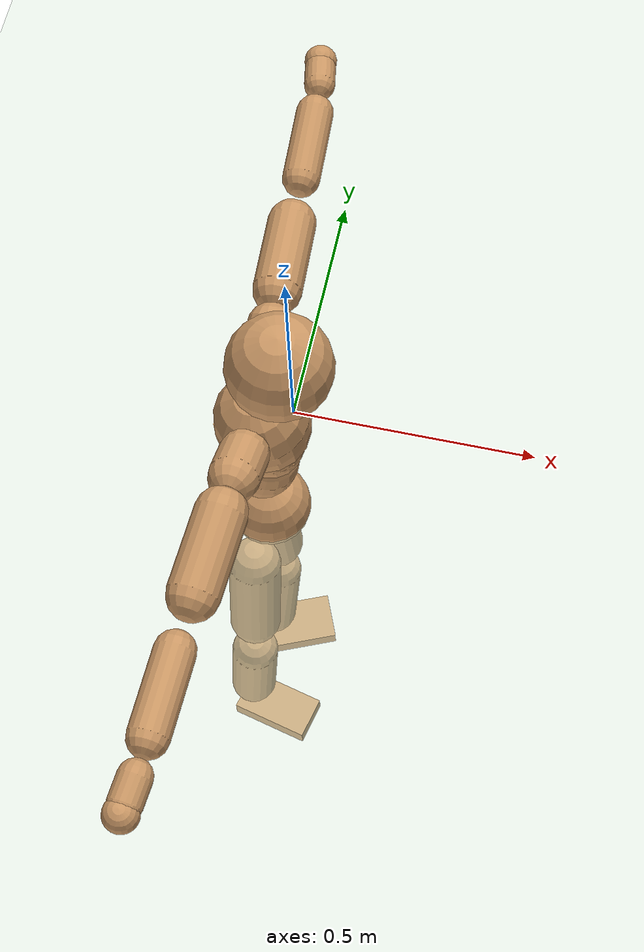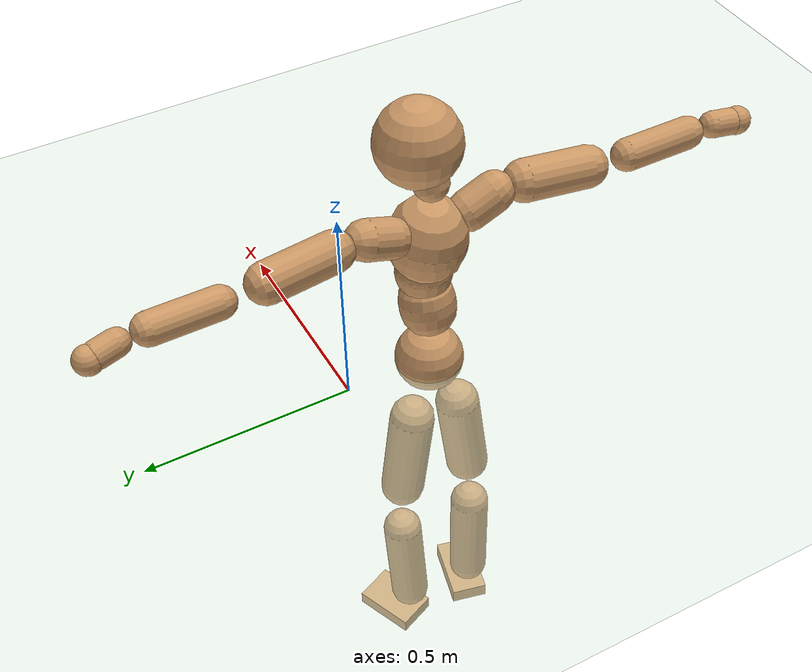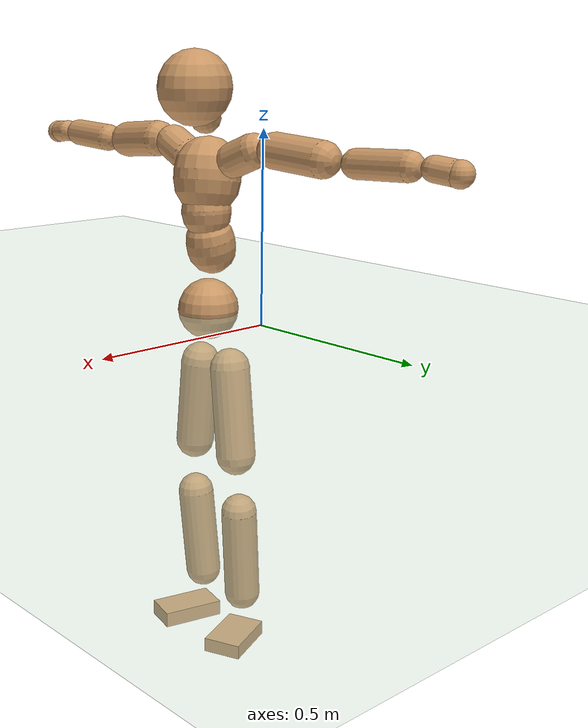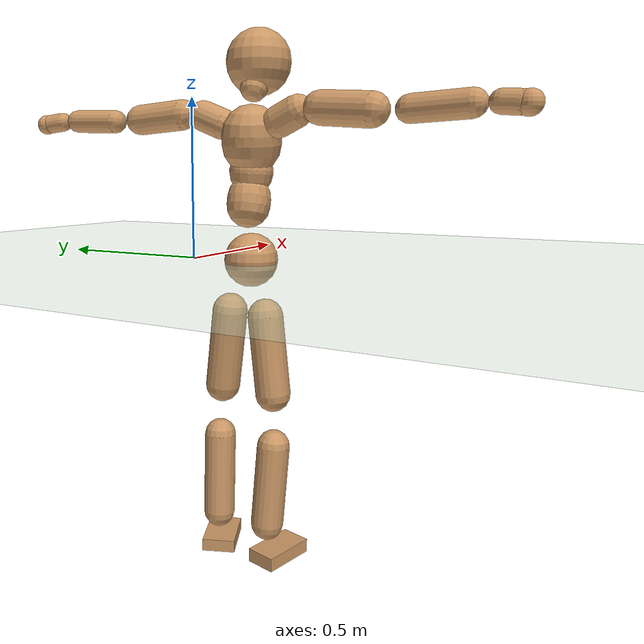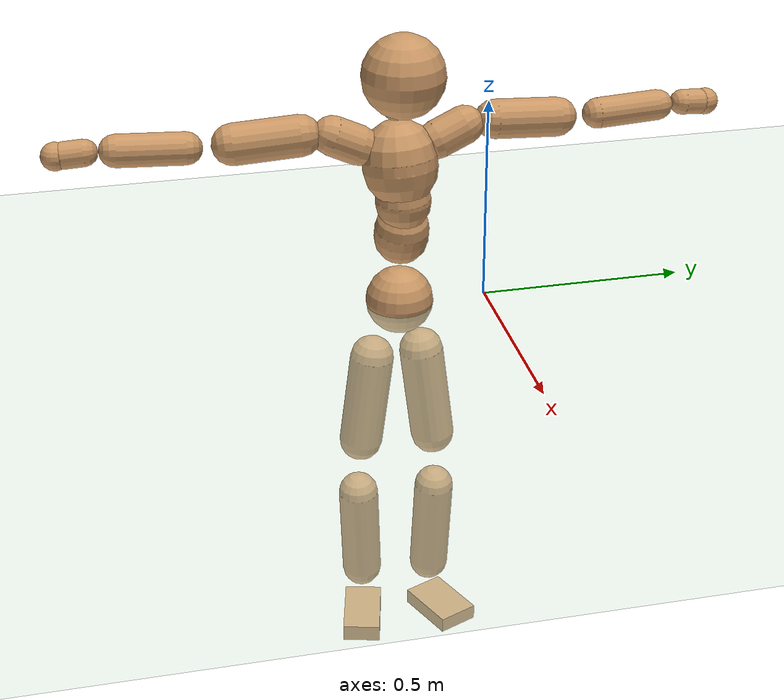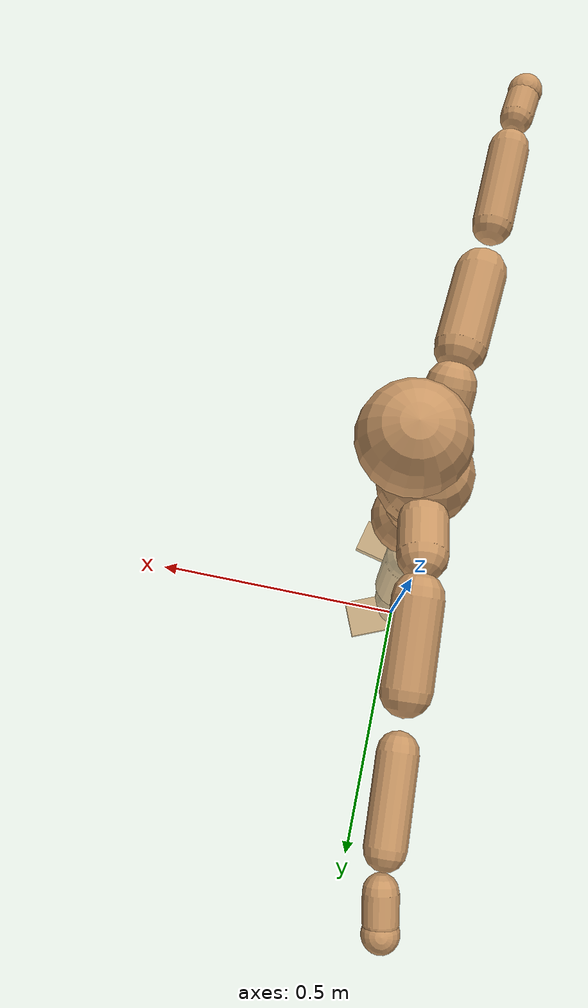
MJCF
<mujoco model="humanoid">
  <compiler coordinate="local" angle="radian"/>
  <default>
    <joint damping="0.0" armature="0.01" stiffness="0.0" limited="true"/>
    <geom conaffinity="1" condim="3" contype="7" margin="0.001" rgba="0.8 0.6 .4 1"/>
  </default>
  <asset>
    <texture type="skybox" builtin="gradient" rgb1=".4 .5 .6" rgb2="0 0 0" width="100" height="100"/>
    <texture builtin="flat" height="1278" mark="cross" markrgb="1 1 1" name="texgeom" random="0.01" rgb1="0.8 0.6 0.4" rgb2="0.8 0.6 0.4" type="cube" width="127"/>
    <texture builtin="checker" height="100" name="texplane" rgb1="0 0 0" rgb2="0.8 0.8 0.8" type="2d" width="100"/>
    <material name="MatPlane" reflectance="0.5" shininess="1" specular="1" texrepeat="60 60" texture="texplane"/>
    <material name="geom" texture="texgeom" texuniform="true"/>
  </asset>
  <worldbody>
    <light cutoff="100" diffuse="1 1 1" dir="-0 0 -1.3" directional="true" exponent="1" pos="0 0 1.3" specular=".1 .1 .1"/>
    <geom conaffinity="1" condim="3" name="floor" pos="0 0 0" rgba="0.8 0.9 0.8 1" size="100 100 .2" type="plane" material="MatPlane"/>
    <body name="Pelvis" pos="0.0007 -0.2123 0.0076">
      <freejoint name="Pelvis"/>
      <geom type="sphere" contype="1" conaffinity="1" density="500" size="0.0826" pos="0.0000 0.0000 0.0000" name="Pelvis"/>
      <body name="L_Hip" pos="-0.0258 0.0515 -0.0778">
        <joint name="L_Hip_x" type="hinge" pos="0 0 0" axis="1 0 0" stiffness="800" damping="80" armature="0.02" range="-180.0000 180.0000"/>
        <joint name="L_Hip_y" type="hinge" pos="0 0 0" axis="0 1 0" stiffness="800" damping="80" armature="0.02" range="-180.0000 180.0000"/>
        <joint name="L_Hip_z" type="hinge" pos="0 0 0" axis="0 0 1" stiffness="800" damping="80" armature="0.02" range="-180.0000 180.0000"/>
        <geom type="capsule" contype="1" conaffinity="1" density="500" fromto="0.0012 0.0099 -0.0816 0.0049 0.0398 -0.3263" size="0.0546" name="L_Hip"/>
        <body name="L_Knee" pos="0.0062 0.0497 -0.4079">
          <joint name="L_Knee_x" type="hinge" pos="0 0 0" axis="1 0 0" stiffness="800" damping="80" armature="0.02" range="-180.0000 180.0000"/>
          <joint name="L_Knee_y" type="hinge" pos="0 0 0" axis="0 1 0" stiffness="800" damping="80" armature="0.02" range="-180.0000 180.0000"/>
          <joint name="L_Knee_z" type="hinge" pos="0 0 0" axis="0 0 1" stiffness="800" damping="80" armature="0.02" range="-180.0000 180.0000"/>
          <geom type="capsule" contype="1" conaffinity="1" density="500" fromto="-0.0067 -0.0023 -0.0855 -0.0267 -0.0093 -0.3418" size="0.0497" name="L_Knee"/>
          <body name="L_Ankle" pos="-0.0334 -0.0116 -0.4273">
            <joint name="L_Ankle_x" type="hinge" pos="0 0 0" axis="1 0 0" stiffness="800" damping="80" armature="0.02" range="-180.0000 180.0000"/>
            <joint name="L_Ankle_y" type="hinge" pos="0 0 0" axis="0 1 0" stiffness="800" damping="80" armature="0.02" range="-180.0000 180.0000"/>
            <joint name="L_Ankle_z" type="hinge" pos="0 0 0" axis="0 0 1" stiffness="800" damping="80" armature="0.02" range="-180.0000 180.0000"/>
            <geom type="box" contype="1" conaffinity="1" density="500" pos="0.0579 0.0244 -0.0300" size="0.0804 0.0526 0.0197" quat="0.9803 0.0000 0.0000 0.1977" name="L_Ankle"/>
            <body name="L_Toe" pos="0.1159 0.0487 -0.06">
              <joint name="L_Toe_x" type="hinge" pos="0 0 0" axis="1 0 0" stiffness="500" damping="50" armature="0.02" range="-180.0000 180.0000"/>
              <joint name="L_Toe_y" type="hinge" pos="0 0 0" axis="0 1 0" stiffness="500" damping="50" armature="0.02" range="-180.0000 180.0000"/>
              <joint name="L_Toe_z" type="hinge" pos="0 0 0" axis="0 0 1" stiffness="500" damping="50" armature="0.02" range="-180.0000 180.0000"/>
              <geom type="box" contype="1" conaffinity="1" density="500" pos="0.0000 0.0000 0.0321" size="0.001 0.0025 0.0011" quat="0.9794 0.0000 0.0000 0.2017" name="L_Toe"/>
            </body>
          </body>
        </body>
      </body>
      <body name="R_Hip" pos="-0.0235 -0.054 -0.0857">
        <joint name="R_Hip_x" type="hinge" pos="0 0 0" axis="1 0 0" stiffness="800" damping="80" armature="0.02" range="-180.0000 180.0000"/>
        <joint name="R_Hip_y" type="hinge" pos="0 0 0" axis="0 1 0" stiffness="800" damping="80" armature="0.02" range="-180.0000 180.0000"/>
        <joint name="R_Hip_z" type="hinge" pos="0 0 0" axis="0 0 1" stiffness="800" damping="80" armature="0.02" range="-180.0000 180.0000"/>
        <geom type="capsule" contype="1" conaffinity="1" density="500" fromto="-0.0011 -0.0100 -0.0800 -0.0044 -0.0400 -0.3200" size="0.054" name="R_Hip"/>
        <body name="R_Knee" pos="-0.0056 -0.0501 -0.4">
          <joint name="R_Knee_x" type="hinge" pos="0 0 0" axis="1 0 0" stiffness="800" damping="80" armature="0.02" range="-180.0000 180.0000"/>
          <joint name="R_Knee_y" type="hinge" pos="0 0 0" axis="0 1 0" stiffness="800" damping="80" armature="0.02" range="-180.0000 180.0000"/>
          <joint name="R_Knee_z" type="hinge" pos="0 0 0" axis="0 0 1" stiffness="800" damping="80" armature="0.02" range="-180.0000 180.0000"/>
          <geom type="capsule" contype="1" conaffinity="1" density="500" fromto="-0.0060 0.0035 -0.0842 -0.0241 0.0141 -0.3369" size="0.0505" name="R_Knee"/>
          <body name="R_Ankle" pos="-0.0302 0.0176 -0.4211">
            <joint name="R_Ankle_x" type="hinge" pos="0 0 0" axis="1 0 0" stiffness="800" damping="80" armature="0.02" range="-180.0000 180.0000"/>
            <joint name="R_Ankle_y" type="hinge" pos="0 0 0" axis="0 1 0" stiffness="800" damping="80" armature="0.02" range="-180.0000 180.0000"/>
            <joint name="R_Ankle_z" type="hinge" pos="0 0 0" axis="0 0 1" stiffness="800" damping="80" armature="0.02" range="-180.0000 180.0000"/>
            <geom type="box" contype="1" conaffinity="1" density="500" pos="0.0622 -0.0150 -0.0325" size="0.0872 0.0476 0.0216" quat="0.9931 0.0000 0.0000 -0.1177" name="R_Ankle"/>
            <body name="R_Toe" pos="0.1244 -0.0299 -0.0651">
              <joint name="R_Toe_x" type="hinge" pos="0 0 0" axis="1 0 0" stiffness="500" damping="50" armature="0.02" range="-180.0000 180.0000"/>
              <joint name="R_Toe_y" type="hinge" pos="0 0 0" axis="0 1 0" stiffness="500" damping="50" armature="0.02" range="-180.0000 180.0000"/>
              <joint name="R_Toe_z" type="hinge" pos="0 0 0" axis="0 0 1" stiffness="500" damping="50" armature="0.02" range="-180.0000 180.0000"/>
              <geom type="box" contype="1" conaffinity="1" density="500" pos="0.0000 0.0000 0.0343" size="0.0009 0.0023 0.0012" quat="0.9941 0.0000 0.0000 -0.1084" name="R_Toe"/>
            </body>
          </body>
        </body>
      </body>
      <body name="Torso" pos="-0.0201 0.0043 0.113">
        <joint name="Torso_x" type="hinge" pos="0 0 0" axis="1 0 0" stiffness="1000" damping="100" armature="0.02" range="-180.0000 180.0000"/>
        <joint name="Torso_y" type="hinge" pos="0 0 0" axis="0 1 0" stiffness="1000" damping="100" armature="0.02" range="-180.0000 180.0000"/>
        <joint name="Torso_z" type="hinge" pos="0 0 0" axis="0 0 1" stiffness="1000" damping="100" armature="0.02" range="-180.0000 180.0000"/>
        <geom type="capsule" contype="1" conaffinity="1" density="500" fromto="0.0185 0.0019 0.0767 0.0123 0.0013 0.0511" size="0.066" name="Torso"/>
        <body name="Spine" pos="0.0309 0.0032 0.1279">
          <joint name="Spine_x" type="hinge" pos="0 0 0" axis="1 0 0" stiffness="1000" damping="100" armature="0.02" range="-180.0000 180.0000"/>
          <joint name="Spine_y" type="hinge" pos="0 0 0" axis="0 1 0" stiffness="1000" damping="100" armature="0.02" range="-180.0000 180.0000"/>
          <joint name="Spine_z" type="hinge" pos="0 0 0" axis="0 0 1" stiffness="1000" damping="100" armature="0.02" range="-180.0000 180.0000"/>
          <geom type="capsule" contype="1" conaffinity="1" density="500" fromto="0.0000 -0.0016 0.0306 0.0000 -0.0010 0.0204" size="0.0666" name="Spine"/>
          <body name="Chest" pos="0.0001 -0.0026 0.0509">
            <joint name="Chest_x" type="hinge" pos="0 0 0" axis="1 0 0" stiffness="1000" damping="100" armature="0.02" range="-180.0000 180.0000"/>
            <joint name="Chest_y" type="hinge" pos="0 0 0" axis="0 1 0" stiffness="1000" damping="100" armature="0.02" range="-180.0000 180.0000"/>
            <joint name="Chest_z" type="hinge" pos="0 0 0" axis="0 0 1" stiffness="1000" damping="100" armature="0.02" range="-180.0000 180.0000"/>
            <geom type="capsule" contype="1" conaffinity="1" density="500" fromto="-0.0112 -0.0055 0.0813 -0.0075 -0.0037 0.0542" size="0.0897" name="Chest"/>
            <body name="Neck" pos="-0.0203 -0.0142 0.1967">
              <joint name="Neck_x" type="hinge" pos="0 0 0" axis="1 0 0" stiffness="500" damping="50" armature="0.02" range="-180.0000 180.0000"/>
              <joint name="Neck_y" type="hinge" pos="0 0 0" axis="0 1 0" stiffness="500" damping="50" armature="0.02" range="-180.0000 180.0000"/>
              <joint name="Neck_z" type="hinge" pos="0 0 0" axis="0 0 1" stiffness="500" damping="50" armature="0.02" range="-180.0000 180.0000"/>
              <geom type="capsule" contype="1" conaffinity="1" density="500" fromto="0.0103 0.0017 0.0193 0.0411 0.0070 0.0772" size="0.0415" name="Neck"/>
              <body name="Head" pos="0.0513 0.0087 0.0965">
                <joint name="Head_x" type="hinge" pos="0 0 0" axis="1 0 0" stiffness="500" damping="50" armature="0.02" range="-180.0000 180.0000"/>
                <joint name="Head_y" type="hinge" pos="0 0 0" axis="0 1 0" stiffness="500" damping="50" armature="0.02" range="-180.0000 180.0000"/>
                <joint name="Head_z" type="hinge" pos="0 0 0" axis="0 0 1" stiffness="500" damping="50" armature="0.02" range="-180.0000 180.0000"/>
                <geom type="sphere" contype="1" conaffinity="1" density="500" size="0.0982" pos="0.0000 0.0000 0.0000" name="Head"/>
              </body>
            </body>
            <body name="L_Thorax" pos="-0.0167 0.0653 0.1045">
              <joint name="L_Thorax_x" type="hinge" pos="0 0 0" axis="1 0 0" stiffness="500" damping="50" armature="0.02" range="-180.0000 180.0000"/>
              <joint name="L_Thorax_y" type="hinge" pos="0 0 0" axis="0 1 0" stiffness="500" damping="50" armature="0.02" range="-180.0000 180.0000"/>
              <joint name="L_Thorax_z" type="hinge" pos="0 0 0" axis="0 0 1" stiffness="500" damping="50" armature="0.02" range="-180.0000 180.0000"/>
              <geom type="capsule" contype="1" conaffinity="1" density="500" fromto="-0.0026 0.0221 0.0091 -0.0104 0.0883 0.0363" size="0.0462" name="L_Thorax"/>
              <body name="L_Shoulder" pos="-0.013 0.1103 0.0454">
                <joint name="L_Shoulder_x" type="hinge" pos="0 0 0" axis="1 0 0" stiffness="500" damping="50" armature="0.02" range="-720.0000 720.0000"/>
                <joint name="L_Shoulder_y" type="hinge" pos="0 0 0" axis="0 1 0" stiffness="500" damping="50" armature="0.02" range="-720.0000 720.0000"/>
                <joint name="L_Shoulder_z" type="hinge" pos="0 0 0" axis="0 0 1" stiffness="500" damping="50" armature="0.02" range="-720.0000 720.0000"/>
                <geom type="capsule" contype="1" conaffinity="1" density="500" fromto="-0.0028 0.0521 -0.0036 -0.0111 0.2084 -0.0144" size="0.0467" name="L_Shoulder"/>
                <body name="L_Elbow" pos="-0.0139 0.2606 -0.018">
                  <joint name="L_Elbow_x" type="hinge" pos="0 0 0" axis="1 0 0" stiffness="500" damping="50" armature="0.02" range="-720.0000 720.0000"/>
                  <joint name="L_Elbow_y" type="hinge" pos="0 0 0" axis="0 1 0" stiffness="500" damping="50" armature="0.02" range="-720.0000 720.0000"/>
                  <joint name="L_Elbow_z" type="hinge" pos="0 0 0" axis="0 0 1" stiffness="500" damping="50" armature="0.02" range="-720.0000 720.0000"/>
                  <geom type="capsule" contype="1" conaffinity="1" density="500" fromto="-0.0024 0.0507 0.0018 -0.0094 0.2029 0.0071" size="0.0367" name="L_Elbow"/>
                  <body name="L_Wrist" pos="-0.0118 0.2537 0.0088">
                    <joint name="L_Wrist_x" type="hinge" pos="0 0 0" axis="1 0 0" stiffness="300" damping="30" armature="0.02" range="-180.0000 180.0000"/>
                    <joint name="L_Wrist_y" type="hinge" pos="0 0 0" axis="0 1 0" stiffness="300" damping="30" armature="0.02" range="-180.0000 180.0000"/>
                    <joint name="L_Wrist_z" type="hinge" pos="0 0 0" axis="0 0 1" stiffness="300" damping="30" armature="0.02" range="-180.0000 180.0000"/>
                    <geom type="capsule" contype="1" conaffinity="1" density="500" fromto="-0.0029 0.0157 -0.0019 -0.0115 0.0627 -0.0075" size="0.0305" name="L_Wrist"/>
                    <body name="L_Hand" pos="-0.0144 0.0784 -0.0094">
                      <joint name="L_Hand_x" type="hinge" pos="0 0 0" axis="1 0 0" stiffness="300" damping="30" armature="0.02" range="-180.0000 180.0000"/>
                      <joint name="L_Hand_y" type="hinge" pos="0 0 0" axis="0 1 0" stiffness="300" damping="30" armature="0.02" range="-180.0000 180.0000"/>
                      <joint name="L_Hand_z" type="hinge" pos="0 0 0" axis="0 0 1" stiffness="300" damping="30" armature="0.02" range="-180.0000 180.0000"/>
                      <geom type="sphere" contype="1" conaffinity="1" density="500" size="0.0321" pos="0.0000 0.0000 0.0000" name="L_Hand"/>
                    </body>
                  </body>
                </body>
              </body>
            </body>
            <body name="R_Thorax" pos="-0.019 -0.0786 0.1053">
              <joint name="R_Thorax_x" type="hinge" pos="0 0 0" axis="1 0 0" stiffness="500" damping="50" armature="0.02" range="-180.0000 180.0000"/>
              <joint name="R_Thorax_y" type="hinge" pos="0 0 0" axis="0 1 0" stiffness="500" damping="50" armature="0.02" range="-180.0000 180.0000"/>
              <joint name="R_Thorax_z" type="hinge" pos="0 0 0" axis="0 0 1" stiffness="500" damping="50" armature="0.02" range="-180.0000 180.0000"/>
              <geom type="capsule" contype="1" conaffinity="1" density="500" fromto="-0.0007 -0.0206 0.0095 -0.0027 -0.0826 0.0380" size="0.0472" name="R_Thorax"/>
              <body name="R_Shoulder" pos="-0.0034 -0.1032 0.0475">
                <joint name="R_Shoulder_x" type="hinge" pos="0 0 0" axis="1 0 0" stiffness="500" damping="50" armature="0.02" range="-720.0000 720.0000"/>
                <joint name="R_Shoulder_y" type="hinge" pos="0 0 0" axis="0 1 0" stiffness="500" damping="50" armature="0.02" range="-720.0000 720.0000"/>
                <joint name="R_Shoulder_z" type="hinge" pos="0 0 0" axis="0 0 1" stiffness="500" damping="50" armature="0.02" range="-720.0000 720.0000"/>
                <geom type="capsule" contype="1" conaffinity="1" density="500" fromto="-0.0040 -0.0521 -0.0042 -0.0161 -0.2083 -0.0168" size="0.049" name="R_Shoulder"/>
                <body name="R_Elbow" pos="-0.0201 -0.2603 -0.021">
                  <joint name="R_Elbow_x" type="hinge" pos="0 0 0" axis="1 0 0" stiffness="500" damping="50" armature="0.02" range="-720.0000 720.0000"/>
                  <joint name="R_Elbow_y" type="hinge" pos="0 0 0" axis="0 1 0" stiffness="500" damping="50" armature="0.02" range="-720.0000 720.0000"/>
                  <joint name="R_Elbow_z" type="hinge" pos="0 0 0" axis="0 0 1" stiffness="500" damping="50" armature="0.02" range="-720.0000 720.0000"/>
                  <geom type="capsule" contype="1" conaffinity="1" density="500" fromto="-0.0017 -0.0530 0.0020 -0.0066 -0.2121 0.0082" size="0.0384" name="R_Elbow"/>
                  <body name="R_Wrist" pos="-0.0083 -0.2651 0.0102">
                    <joint name="R_Wrist_x" type="hinge" pos="0 0 0" axis="1 0 0" stiffness="300" damping="30" armature="0.02" range="-180.0000 180.0000"/>
                    <joint name="R_Wrist_y" type="hinge" pos="0 0 0" axis="0 1 0" stiffness="300" damping="30" armature="0.02" range="-180.0000 180.0000"/>
                    <joint name="R_Wrist_z" type="hinge" pos="0 0 0" axis="0 0 1" stiffness="300" damping="30" armature="0.02" range="-180.0000 180.0000"/>
                    <geom type="capsule" contype="1" conaffinity="1" density="500" fromto="-0.0019 -0.0163 -0.0015 -0.0076 -0.0652 -0.0061" size="0.0316" name="R_Wrist"/>
                    <body name="R_Hand" pos="-0.0095 -0.0815 -0.0076">
                      <joint name="R_Hand_x" type="hinge" pos="0 0 0" axis="1 0 0" stiffness="300" damping="30" armature="0.02" range="-180.0000 180.0000"/>
                      <joint name="R_Hand_y" type="hinge" pos="0 0 0" axis="0 1 0" stiffness="300" damping="30" armature="0.02" range="-180.0000 180.0000"/>
                      <joint name="R_Hand_z" type="hinge" pos="0 0 0" axis="0 0 1" stiffness="300" damping="30" armature="0.02" range="-180.0000 180.0000"/>
                      <geom type="sphere" contype="1" conaffinity="1" density="500" size="0.0331" pos="0.0000 0.0000 0.0000" name="R_Hand"/>
                    </body>
                  </body>
                </body>
              </body>
            </body>
          </body>
        </body>
      </body>
    </body>
  </worldbody>
  <actuator>
    <motor name="L_Hip_x" joint="L_Hip_x" gear="500"/>
    <motor name="L_Hip_y" joint="L_Hip_y" gear="500"/>
    <motor name="L_Hip_z" joint="L_Hip_z" gear="500"/>
    <motor name="L_Knee_x" joint="L_Knee_x" gear="500"/>
    <motor name="L_Knee_y" joint="L_Knee_y" gear="500"/>
    <motor name="L_Knee_z" joint="L_Knee_z" gear="500"/>
    <motor name="L_Ankle_x" joint="L_Ankle_x" gear="500"/>
    <motor name="L_Ankle_y" joint="L_Ankle_y" gear="500"/>
    <motor name="L_Ankle_z" joint="L_Ankle_z" gear="500"/>
    <motor name="L_Toe_x" joint="L_Toe_x" gear="500"/>
    <motor name="L_Toe_y" joint="L_Toe_y" gear="500"/>
    <motor name="L_Toe_z" joint="L_Toe_z" gear="500"/>
    <motor name="R_Hip_x" joint="R_Hip_x" gear="500"/>
    <motor name="R_Hip_y" joint="R_Hip_y" gear="500"/>
    <motor name="R_Hip_z" joint="R_Hip_z" gear="500"/>
    <motor name="R_Knee_x" joint="R_Knee_x" gear="500"/>
    <motor name="R_Knee_y" joint="R_Knee_y" gear="500"/>
    <motor name="R_Knee_z" joint="R_Knee_z" gear="500"/>
    <motor name="R_Ankle_x" joint="R_Ankle_x" gear="500"/>
    <motor name="R_Ankle_y" joint="R_Ankle_y" gear="500"/>
    <motor name="R_Ankle_z" joint="R_Ankle_z" gear="500"/>
    <motor name="R_Toe_x" joint="R_Toe_x" gear="500"/>
    <motor name="R_Toe_y" joint="R_Toe_y" gear="500"/>
    <motor name="R_Toe_z" joint="R_Toe_z" gear="500"/>
    <motor name="Torso_x" joint="Torso_x" gear="500"/>
    <motor name="Torso_y" joint="Torso_y" gear="500"/>
    <motor name="Torso_z" joint="Torso_z" gear="500"/>
    <motor name="Spine_x" joint="Spine_x" gear="500"/>
    <motor name="Spine_y" joint="Spine_y" gear="500"/>
    <motor name="Spine_z" joint="Spine_z" gear="500"/>
    <motor name="Chest_x" joint="Chest_x" gear="500"/>
    <motor name="Chest_y" joint="Chest_y" gear="500"/>
    <motor name="Chest_z" joint="Chest_z" gear="500"/>
    <motor name="Neck_x" joint="Neck_x" gear="500"/>
    <motor name="Neck_y" joint="Neck_y" gear="500"/>
    <motor name="Neck_z" joint="Neck_z" gear="500"/>
    <motor name="Head_x" joint="Head_x" gear="500"/>
    <motor name="Head_y" joint="Head_y" gear="500"/>
    <motor name="Head_z" joint="Head_z" gear="500"/>
    <motor name="L_Thorax_x" joint="L_Thorax_x" gear="500"/>
    <motor name="L_Thorax_y" joint="L_Thorax_y" gear="500"/>
    <motor name="L_Thorax_z" joint="L_Thorax_z" gear="500"/>
    <motor name="L_Shoulder_x" joint="L_Shoulder_x" gear="500"/>
    <motor name="L_Shoulder_y" joint="L_Shoulder_y" gear="500"/>
    <motor name="L_Shoulder_z" joint="L_Shoulder_z" gear="500"/>
    <motor name="L_Elbow_x" joint="L_Elbow_x" gear="500"/>
    <motor name="L_Elbow_y" joint="L_Elbow_y" gear="500"/>
    <motor name="L_Elbow_z" joint="L_Elbow_z" gear="500"/>
    <motor name="L_Wrist_x" joint="L_Wrist_x" gear="500"/>
    <motor name="L_Wrist_y" joint="L_Wrist_y" gear="500"/>
    <motor name="L_Wrist_z" joint="L_Wrist_z" gear="500"/>
    <motor name="L_Hand_x" joint="L_Hand_x" gear="500"/>
    <motor name="L_Hand_y" joint="L_Hand_y" gear="500"/>
    <motor name="L_Hand_z" joint="L_Hand_z" gear="500"/>
    <motor name="R_Thorax_x" joint="R_Thorax_x" gear="500"/>
    <motor name="R_Thorax_y" joint="R_Thorax_y" gear="500"/>
    <motor name="R_Thorax_z" joint="R_Thorax_z" gear="500"/>
    <motor name="R_Shoulder_x" joint="R_Shoulder_x" gear="500"/>
    <motor name="R_Shoulder_y" joint="R_Shoulder_y" gear="500"/>
    <motor name="R_Shoulder_z" joint="R_Shoulder_z" gear="500"/>
    <motor name="R_Elbow_x" joint="R_Elbow_x" gear="500"/>
    <motor name="R_Elbow_y" joint="R_Elbow_y" gear="500"/>
    <motor name="R_Elbow_z" joint="R_Elbow_z" gear="500"/>
    <motor name="R_Wrist_x" joint="R_Wrist_x" gear="500"/>
    <motor name="R_Wrist_y" joint="R_Wrist_y" gear="500"/>
    <motor name="R_Wrist_z" joint="R_Wrist_z" gear="500"/>
    <motor name="R_Hand_x" joint="R_Hand_x" gear="500"/>
    <motor name="R_Hand_y" joint="R_Hand_y" gear="500"/>
    <motor name="R_Hand_z" joint="R_Hand_z" gear="500"/>
  </actuator>
  <contact>
    <exclude body1="Torso" body2="Chest"/>
    <exclude body1="Head" body2="Chest"/>
    <exclude body1="R_Knee" body2="R_Toe"/>
    <exclude body1="R_Knee" body2="L_Ankle"/>
    <exclude body1="R_Knee" body2="L_Toe"/>
    <exclude body1="L_Knee" body2="L_Toe"/>
    <exclude body1="L_Knee" body2="R_Ankle"/>
    <exclude body1="L_Knee" body2="R_Toe"/>
    <exclude body1="L_Shoulder" body2="Chest"/>
    <exclude body1="R_Shoulder" body2="Chest"/>
  </contact>
  <sensor/>
  <size njmax="700" nconmax="700"/>
</mujoco>
